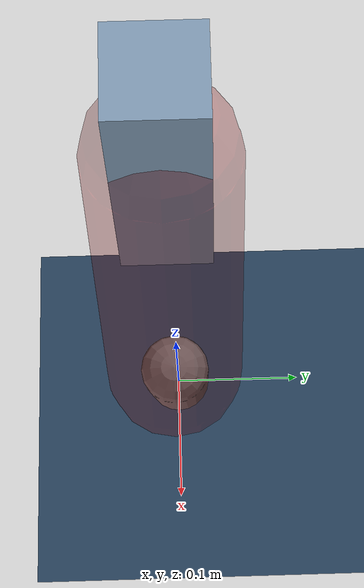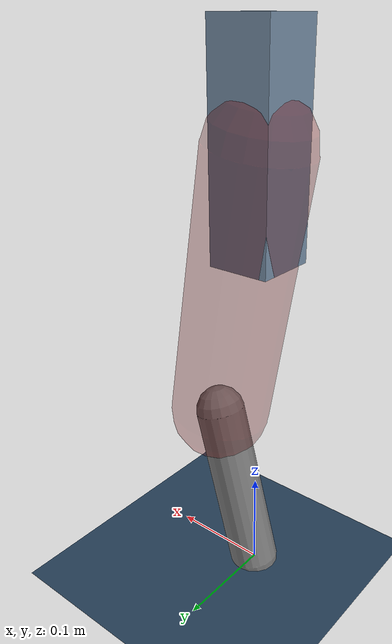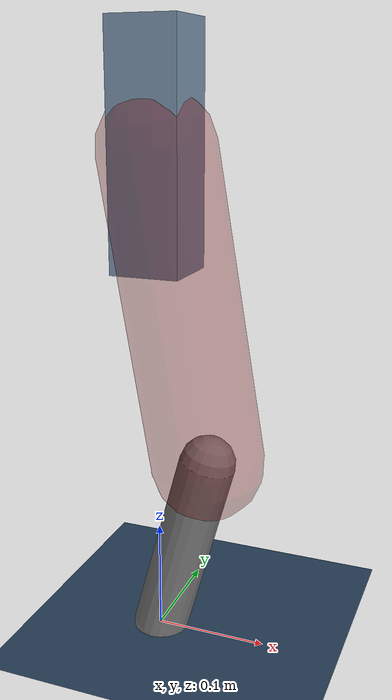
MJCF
<mujoco model="Hopper2D">
	<compiler inertiafromgeom="true" angle="radian" />
	<option timestep="0.001" integrator="implicit" cone="elliptic" solver="Newton" tolerance="1e-10" />

	<default>
		<geom contype="1" conaffinity="1" condim="3" friction="2 0.005 0.0001" solref="0.005 1" />
		<joint limited="true" damping="0.1" />
	</default>

	<asset>
		<texture name="skybox" type="skybox" builtin="gradient" rgb1=".4 .6 .8" rgb2="0 0 0" width="800" height="800" />
		<texture name="grid" type="2d" builtin="checker" rgb1=".1 .2 .3" rgb2=".2 .3 .4" width="300" height="300" mark="edge" markrgb=".2 .3 .4" />
		<material name="ground" texture="grid" texrepeat="1 1" texuniform="true" reflectance="0.1" />
		<material name="leg" rgba="0.5 0.6 0.7 1" />
	</asset>

	<worldbody>

		<geom name="floor" type="plane" size="5 5 0.25" material="ground" />

		<light directional="false" diffuse="0.8 0.8 0.8" specular="0.3 0.3 0.3" pos="0 0 2" dir="0 0 -1" />
		<light mode="targetbodycom" target="base" directional="false" diffuse="0.8 0.8 0.8" specular="0.3 0.3 0.3" pos="0 0 2" dir="0 0 -1" />

		<camera name="fixed" pos="0 -2 1" xyaxes="1 0 0 0 0 1" />
		<camera name="tracking" mode="trackcom" pos="0 -3 1" />

		<body name="root" pos="0 0 0.4363995270003782">
			<joint name="slide_x" type="slide" axis="1 0 0" range="-100 100" />
			<joint name="slide_z" type="slide" axis="0 0 1" range="0 10" />

			<body name="base" pos="0 0 0">
				<geom name="torso" type="box" size="0.03 0.03 0.1" mass="2.186" material="leg" />

				<body name="link1" pos="0 0 0" euler="0 1.4003340381797686 0">
					<joint type="hinge" axis="0 -1 0" pos="0 0 0" name="hinge1" limited="true" range="-3.14 3.14" stiffness="0" damping="0.1" />
					<geom name="thigh" type="capsule" fromto="0 0 0 0.2703829207732673 0 0" size="0.05" rgba="0.5 0 0 0.3" mass="0.9096955940104949" />

					<body name="link2" pos="0.2703829207732673 0 0" euler="0 0.4340898973383468 0">
						<joint type="hinge" axis="0 -1 0" pos="0 0 0" name="hinge2" limited="true" range="-3.14 3.14" stiffness="0" damping="0.1" />
						<geom name="shank" type="capsule" fromto="0 0 0 0.1760166062271109 0 0" size="0.025" mass="0.38051328498168874" />

					</body>
				</body>
			</body>
		</body>
	</worldbody>

	<actuator>
		<motor name="torque1" joint="hinge1" ctrlrange="-62.21801533571689 62.21801533571689" ctrllimited="true" gear="1" />
		<motor name="torque2" joint="hinge2" ctrlrange="-84.45984844013968 84.45984844013968" ctrllimited="true" gear="1" />
	</actuator>
</mujoco>
